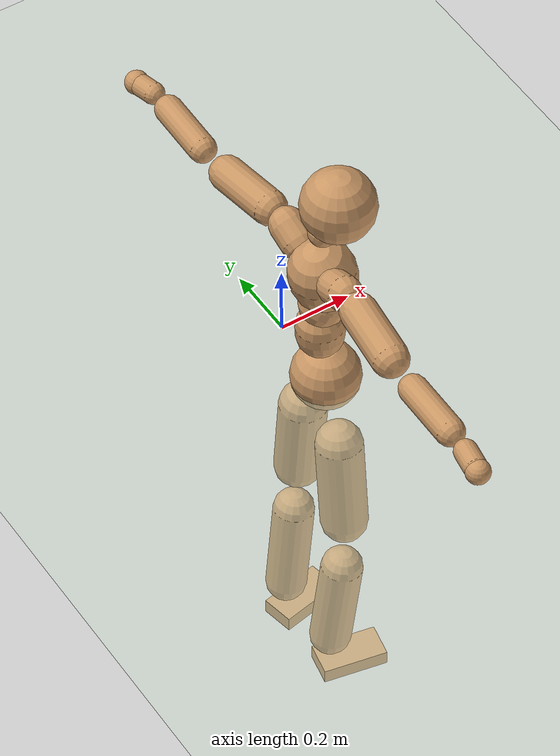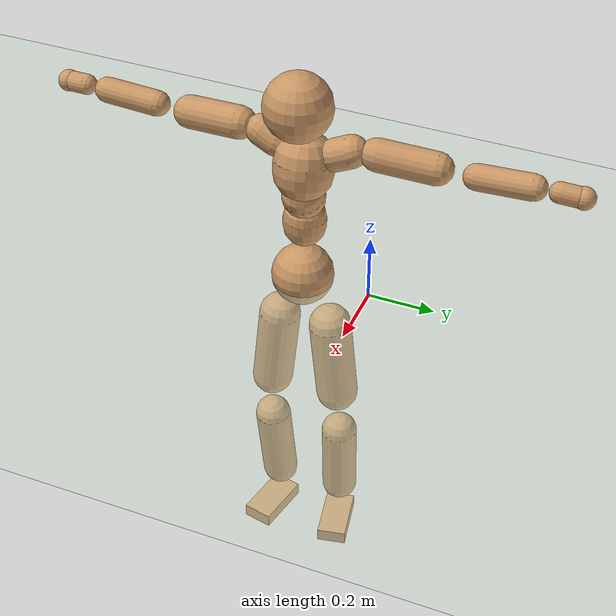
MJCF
<mujoco model="humanoid">
  <compiler coordinate="local" angle="radian"/>
  <default>
    <joint damping="0.0" armature="0.01" stiffness="0.0" limited="true"/>
    <geom conaffinity="1" condim="3" contype="7" margin="0.001" rgba="0.8 0.6 .4 1"/>
  </default>
  <asset>
    <texture type="skybox" builtin="gradient" rgb1=".4 .5 .6" rgb2="0 0 0" width="100" height="100"/>
    <texture builtin="flat" height="1278" mark="cross" markrgb="1 1 1" name="texgeom" random="0.01" rgb1="0.8 0.6 0.4" rgb2="0.8 0.6 0.4" type="cube" width="127"/>
    <texture builtin="checker" height="100" name="texplane" rgb1="0 0 0" rgb2="0.8 0.8 0.8" type="2d" width="100"/>
    <material name="MatPlane" reflectance="0.5" shininess="1" specular="1" texrepeat="60 60" texture="texplane"/>
    <material name="geom" texture="texgeom" texuniform="true"/>
  </asset>
  <worldbody>
    <light cutoff="100" diffuse="1 1 1" dir="-0 0 -1.3" directional="true" exponent="1" pos="0 0 1.3" specular=".1 .1 .1"/>
    <geom conaffinity="1" condim="3" name="floor" pos="0 0 0" rgba="0.8 0.9 0.8 1" size="100 100 .2" type="plane" material="MatPlane"/>
    <body name="Pelvis" pos="-0.0003 -0.2064 0.0182">
      <freejoint name="Pelvis"/>
      <geom type="sphere" contype="1" conaffinity="1" density="500" size="0.0930" pos="0.0000 0.0000 0.0000" name="Pelvis"/>
      <body name="L_Hip" pos="-0.0151 0.0733 -0.0953">
        <joint name="L_Hip_x" type="hinge" pos="0 0 0" axis="1 0 0" stiffness="800" damping="80" armature="0.02" range="-180.0000 180.0000"/>
        <joint name="L_Hip_y" type="hinge" pos="0 0 0" axis="0 1 0" stiffness="800" damping="80" armature="0.02" range="-180.0000 180.0000"/>
        <joint name="L_Hip_z" type="hinge" pos="0 0 0" axis="0 0 1" stiffness="800" damping="80" armature="0.02" range="-180.0000 180.0000"/>
        <geom type="capsule" contype="1" conaffinity="1" density="500" fromto="0.0002 0.0086 -0.0869 0.0009 0.0344 -0.3476" size="0.0643" name="L_Hip"/>
        <body name="L_Knee" pos="0.0011 0.043 -0.4344">
          <joint name="L_Knee_x" type="hinge" pos="0 0 0" axis="1 0 0" stiffness="800" damping="80" armature="0.02" range="-180.0000 180.0000"/>
          <joint name="L_Knee_y" type="hinge" pos="0 0 0" axis="0 1 0" stiffness="800" damping="80" armature="0.02" range="-180.0000 180.0000"/>
          <joint name="L_Knee_z" type="hinge" pos="0 0 0" axis="0 0 1" stiffness="800" damping="80" armature="0.02" range="-180.0000 180.0000"/>
          <geom type="capsule" contype="1" conaffinity="1" density="500" fromto="-0.0098 -0.0025 -0.0912 -0.0391 -0.0102 -0.3648" size="0.0557" name="L_Knee"/>
          <body name="L_Ankle" pos="-0.0489 -0.0127 -0.456">
            <joint name="L_Ankle_x" type="hinge" pos="0 0 0" axis="1 0 0" stiffness="800" damping="80" armature="0.02" range="-180.0000 180.0000"/>
            <joint name="L_Ankle_y" type="hinge" pos="0 0 0" axis="0 1 0" stiffness="800" damping="80" armature="0.02" range="-180.0000 180.0000"/>
            <joint name="L_Ankle_z" type="hinge" pos="0 0 0" axis="0 0 1" stiffness="800" damping="80" armature="0.02" range="-180.0000 180.0000"/>
            <geom type="box" contype="1" conaffinity="1" density="500" pos="0.0625 0.0123 -0.0312" size="0.0875 0.0456 0.0223" quat="0.9953 0.0000 0.0000 0.0967" name="L_Ankle"/>
            <body name="L_Toe" pos="0.1249 0.0245 -0.0624">
              <joint name="L_Toe_x" type="hinge" pos="0 0 0" axis="1 0 0" stiffness="500" damping="50" armature="0.02" range="-180.0000 180.0000"/>
              <joint name="L_Toe_y" type="hinge" pos="0 0 0" axis="0 1 0" stiffness="500" damping="50" armature="0.02" range="-180.0000 180.0000"/>
              <joint name="L_Toe_z" type="hinge" pos="0 0 0" axis="0 0 1" stiffness="500" damping="50" armature="0.02" range="-180.0000 180.0000"/>
              <geom type="box" contype="1" conaffinity="1" density="500" pos="0.0000 0.0000 0.0313" size="0.0009 0.0023 0.0011" quat="0.9947 0.0000 0.0000 0.1028" name="L_Toe"/>
            </body>
          </body>
        </body>
      </body>
      <body name="R_Hip" pos="-0.0107 -0.0705 -0.0935">
        <joint name="R_Hip_x" type="hinge" pos="0 0 0" axis="1 0 0" stiffness="800" damping="80" armature="0.02" range="-180.0000 180.0000"/>
        <joint name="R_Hip_y" type="hinge" pos="0 0 0" axis="0 1 0" stiffness="800" damping="80" armature="0.02" range="-180.0000 180.0000"/>
        <joint name="R_Hip_z" type="hinge" pos="0 0 0" axis="0 0 1" stiffness="800" damping="80" armature="0.02" range="-180.0000 180.0000"/>
        <geom type="capsule" contype="1" conaffinity="1" density="500" fromto="-0.0005 -0.0099 -0.0886 -0.0022 -0.0396 -0.3545" size="0.0632" name="R_Hip"/>
        <body name="R_Knee" pos="-0.0027 -0.0496 -0.4431">
          <joint name="R_Knee_x" type="hinge" pos="0 0 0" axis="1 0 0" stiffness="800" damping="80" armature="0.02" range="-180.0000 180.0000"/>
          <joint name="R_Knee_y" type="hinge" pos="0 0 0" axis="0 1 0" stiffness="800" damping="80" armature="0.02" range="-180.0000 180.0000"/>
          <joint name="R_Knee_z" type="hinge" pos="0 0 0" axis="0 0 1" stiffness="800" damping="80" armature="0.02" range="-180.0000 180.0000"/>
          <geom type="capsule" contype="1" conaffinity="1" density="500" fromto="-0.0092 0.0033 -0.0911 -0.0370 0.0133 -0.3646" size="0.056" name="R_Knee"/>
          <body name="R_Ankle" pos="-0.0462 0.0166 -0.4557">
            <joint name="R_Ankle_x" type="hinge" pos="0 0 0" axis="1 0 0" stiffness="800" damping="80" armature="0.02" range="-180.0000 180.0000"/>
            <joint name="R_Ankle_y" type="hinge" pos="0 0 0" axis="0 1 0" stiffness="800" damping="80" armature="0.02" range="-180.0000 180.0000"/>
            <joint name="R_Ankle_z" type="hinge" pos="0 0 0" axis="0 0 1" stiffness="800" damping="80" armature="0.02" range="-180.0000 180.0000"/>
            <geom type="box" contype="1" conaffinity="1" density="500" pos="0.0641 -0.0123 -0.0269" size="0.0894 0.0469 0.0218" quat="0.9955 0.0000 0.0000 -0.0950" name="R_Ankle"/>
            <body name="R_Toe" pos="0.1282 -0.0247 -0.0538">
              <joint name="R_Toe_x" type="hinge" pos="0 0 0" axis="1 0 0" stiffness="500" damping="50" armature="0.02" range="-180.0000 180.0000"/>
              <joint name="R_Toe_y" type="hinge" pos="0 0 0" axis="0 1 0" stiffness="500" damping="50" armature="0.02" range="-180.0000 180.0000"/>
              <joint name="R_Toe_z" type="hinge" pos="0 0 0" axis="0 0 1" stiffness="500" damping="50" armature="0.02" range="-180.0000 180.0000"/>
              <geom type="box" contype="1" conaffinity="1" density="500" pos="0.0000 0.0000 0.0293" size="0.0008 0.0023 0.0012" quat="0.9963 0.0000 0.0000 -0.0862" name="R_Toe"/>
            </body>
          </body>
        </body>
      </body>
      <body name="Torso" pos="-0.0175 -0.003 0.1088">
        <joint name="Torso_x" type="hinge" pos="0 0 0" axis="1 0 0" stiffness="1000" damping="100" armature="0.02" range="-180.0000 180.0000"/>
        <joint name="Torso_y" type="hinge" pos="0 0 0" axis="0 1 0" stiffness="1000" damping="100" armature="0.02" range="-180.0000 180.0000"/>
        <joint name="Torso_z" type="hinge" pos="0 0 0" axis="0 0 1" stiffness="1000" damping="100" armature="0.02" range="-180.0000 180.0000"/>
        <geom type="capsule" contype="1" conaffinity="1" density="500" fromto="-0.0011 0.0025 0.0834 -0.0008 0.0017 0.0556" size="0.0634" name="Torso"/>
        <body name="Spine" pos="-0.0019 0.0041 0.139">
          <joint name="Spine_x" type="hinge" pos="0 0 0" axis="1 0 0" stiffness="1000" damping="100" armature="0.02" range="-180.0000 180.0000"/>
          <joint name="Spine_y" type="hinge" pos="0 0 0" axis="0 1 0" stiffness="1000" damping="100" armature="0.02" range="-180.0000 180.0000"/>
          <joint name="Spine_z" type="hinge" pos="0 0 0" axis="0 0 1" stiffness="1000" damping="100" armature="0.02" range="-180.0000 180.0000"/>
          <geom type="capsule" contype="1" conaffinity="1" density="500" fromto="0.0156 0.0006 0.0305 0.0104 0.0004 0.0204" size="0.0634" name="Spine"/>
          <body name="Chest" pos="0.0259 0.0009 0.0509">
            <joint name="Chest_x" type="hinge" pos="0 0 0" axis="1 0 0" stiffness="1000" damping="100" armature="0.02" range="-180.0000 180.0000"/>
            <joint name="Chest_y" type="hinge" pos="0 0 0" axis="0 1 0" stiffness="1000" damping="100" armature="0.02" range="-180.0000 180.0000"/>
            <joint name="Chest_z" type="hinge" pos="0 0 0" axis="0 0 1" stiffness="1000" damping="100" armature="0.02" range="-180.0000 180.0000"/>
            <geom type="capsule" contype="1" conaffinity="1" density="500" fromto="-0.0196 -0.0013 0.0878 -0.0130 -0.0009 0.0585" size="0.0878" name="Chest"/>
            <body name="Neck" pos="-0.03 -0.0043 0.2126">
              <joint name="Neck_x" type="hinge" pos="0 0 0" axis="1 0 0" stiffness="500" damping="50" armature="0.02" range="-180.0000 180.0000"/>
              <joint name="Neck_y" type="hinge" pos="0 0 0" axis="0 1 0" stiffness="500" damping="50" armature="0.02" range="-180.0000 180.0000"/>
              <joint name="Neck_z" type="hinge" pos="0 0 0" axis="0 0 1" stiffness="500" damping="50" armature="0.02" range="-180.0000 180.0000"/>
              <geom type="capsule" contype="1" conaffinity="1" density="500" fromto="0.0120 0.0013 0.0153 0.0480 0.0054 0.0613" size="0.0394" name="Neck"/>
              <body name="Head" pos="0.06 0.0067 0.0766">
                <joint name="Head_x" type="hinge" pos="0 0 0" axis="1 0 0" stiffness="500" damping="50" armature="0.02" range="-180.0000 180.0000"/>
                <joint name="Head_y" type="hinge" pos="0 0 0" axis="0 1 0" stiffness="500" damping="50" armature="0.02" range="-180.0000 180.0000"/>
                <joint name="Head_z" type="hinge" pos="0 0 0" axis="0 0 1" stiffness="500" damping="50" armature="0.02" range="-180.0000 180.0000"/>
                <geom type="sphere" contype="1" conaffinity="1" density="500" size="0.0983" pos="0.0000 0.0000 0.0000" name="Head"/>
              </body>
            </body>
            <body name="L_Thorax" pos="-0.031 0.0703 0.1139">
              <joint name="L_Thorax_x" type="hinge" pos="0 0 0" axis="1 0 0" stiffness="500" damping="50" armature="0.02" range="-180.0000 180.0000"/>
              <joint name="L_Thorax_y" type="hinge" pos="0 0 0" axis="0 1 0" stiffness="500" damping="50" armature="0.02" range="-180.0000 180.0000"/>
              <joint name="L_Thorax_z" type="hinge" pos="0 0 0" axis="0 0 1" stiffness="500" damping="50" armature="0.02" range="-180.0000 180.0000"/>
              <geom type="capsule" contype="1" conaffinity="1" density="500" fromto="-0.0010 0.0156 0.0072 -0.0040 0.0624 0.0289" size="0.0475" name="L_Thorax"/>
              <body name="L_Shoulder" pos="-0.005 0.078 0.0361">
                <joint name="L_Shoulder_x" type="hinge" pos="0 0 0" axis="1 0 0" stiffness="500" damping="50" armature="0.02" range="-720.0000 720.0000"/>
                <joint name="L_Shoulder_y" type="hinge" pos="0 0 0" axis="0 1 0" stiffness="500" damping="50" armature="0.02" range="-720.0000 720.0000"/>
                <joint name="L_Shoulder_z" type="hinge" pos="0 0 0" axis="0 0 1" stiffness="500" damping="50" armature="0.02" range="-720.0000 720.0000"/>
                <geom type="capsule" contype="1" conaffinity="1" density="500" fromto="-0.0059 0.0553 -0.0044 -0.0238 0.2211 -0.0176" size="0.0473" name="L_Shoulder"/>
                <body name="L_Elbow" pos="-0.0297 0.2764 -0.022">
                  <joint name="L_Elbow_x" type="hinge" pos="0 0 0" axis="1 0 0" stiffness="500" damping="50" armature="0.02" range="-720.0000 720.0000"/>
                  <joint name="L_Elbow_y" type="hinge" pos="0 0 0" axis="0 1 0" stiffness="500" damping="50" armature="0.02" range="-720.0000 720.0000"/>
                  <joint name="L_Elbow_z" type="hinge" pos="0 0 0" axis="0 0 1" stiffness="500" damping="50" armature="0.02" range="-720.0000 720.0000"/>
                  <geom type="capsule" contype="1" conaffinity="1" density="500" fromto="-0.0003 0.0527 0.0025 -0.0010 0.2107 0.0099" size="0.0374" name="L_Elbow"/>
                  <body name="L_Wrist" pos="-0.0013 0.2633 0.0124">
                    <joint name="L_Wrist_x" type="hinge" pos="0 0 0" axis="1 0 0" stiffness="300" damping="30" armature="0.02" range="-180.0000 180.0000"/>
                    <joint name="L_Wrist_y" type="hinge" pos="0 0 0" axis="0 1 0" stiffness="300" damping="30" armature="0.02" range="-180.0000 180.0000"/>
                    <joint name="L_Wrist_z" type="hinge" pos="0 0 0" axis="0 0 1" stiffness="300" damping="30" armature="0.02" range="-180.0000 180.0000"/>
                    <geom type="capsule" contype="1" conaffinity="1" density="500" fromto="-0.0027 0.0160 -0.0020 -0.0110 0.0640 -0.0082" size="0.0297" name="L_Wrist"/>
                    <body name="L_Hand" pos="-0.0137 0.08 -0.0102">
                      <joint name="L_Hand_x" type="hinge" pos="0 0 0" axis="1 0 0" stiffness="300" damping="30" armature="0.02" range="-180.0000 180.0000"/>
                      <joint name="L_Hand_y" type="hinge" pos="0 0 0" axis="0 1 0" stiffness="300" damping="30" armature="0.02" range="-180.0000 180.0000"/>
                      <joint name="L_Hand_z" type="hinge" pos="0 0 0" axis="0 0 1" stiffness="300" damping="30" armature="0.02" range="-180.0000 180.0000"/>
                      <geom type="sphere" contype="1" conaffinity="1" density="500" size="0.0321" pos="0.0000 0.0000 0.0000" name="L_Hand"/>
                    </body>
                  </body>
                </body>
              </body>
            </body>
            <body name="R_Thorax" pos="-0.0368 -0.0725 0.1123">
              <joint name="R_Thorax_x" type="hinge" pos="0 0 0" axis="1 0 0" stiffness="500" damping="50" armature="0.02" range="-180.0000 180.0000"/>
              <joint name="R_Thorax_y" type="hinge" pos="0 0 0" axis="0 1 0" stiffness="500" damping="50" armature="0.02" range="-180.0000 180.0000"/>
              <joint name="R_Thorax_z" type="hinge" pos="0 0 0" axis="0 0 1" stiffness="500" damping="50" armature="0.02" range="-180.0000 180.0000"/>
              <geom type="capsule" contype="1" conaffinity="1" density="500" fromto="-0.0012 -0.0164 0.0074 -0.0048 -0.0655 0.0298" size="0.0462" name="R_Thorax"/>
              <body name="R_Shoulder" pos="-0.006 -0.0819 0.0372">
                <joint name="R_Shoulder_x" type="hinge" pos="0 0 0" axis="1 0 0" stiffness="500" damping="50" armature="0.02" range="-720.0000 720.0000"/>
                <joint name="R_Shoulder_y" type="hinge" pos="0 0 0" axis="0 1 0" stiffness="500" damping="50" armature="0.02" range="-720.0000 720.0000"/>
                <joint name="R_Shoulder_z" type="hinge" pos="0 0 0" axis="0 0 1" stiffness="500" damping="50" armature="0.02" range="-720.0000 720.0000"/>
                <geom type="capsule" contype="1" conaffinity="1" density="500" fromto="-0.0048 -0.0538 -0.0039 -0.0192 -0.2150 -0.0157" size="0.0486" name="R_Shoulder"/>
                <body name="R_Elbow" pos="-0.024 -0.2688 -0.0196">
                  <joint name="R_Elbow_x" type="hinge" pos="0 0 0" axis="1 0 0" stiffness="500" damping="50" armature="0.02" range="-720.0000 720.0000"/>
                  <joint name="R_Elbow_y" type="hinge" pos="0 0 0" axis="0 1 0" stiffness="500" damping="50" armature="0.02" range="-720.0000 720.0000"/>
                  <joint name="R_Elbow_z" type="hinge" pos="0 0 0" axis="0 0 1" stiffness="500" damping="50" armature="0.02" range="-720.0000 720.0000"/>
                  <geom type="capsule" contype="1" conaffinity="1" density="500" fromto="-0.0013 -0.0544 0.0017 -0.0054 -0.2175 0.0068" size="0.0376" name="R_Elbow"/>
                  <body name="R_Wrist" pos="-0.0067 -0.2719 0.0085">
                    <joint name="R_Wrist_x" type="hinge" pos="0 0 0" axis="1 0 0" stiffness="300" damping="30" armature="0.02" range="-180.0000 180.0000"/>
                    <joint name="R_Wrist_y" type="hinge" pos="0 0 0" axis="0 1 0" stiffness="300" damping="30" armature="0.02" range="-180.0000 180.0000"/>
                    <joint name="R_Wrist_z" type="hinge" pos="0 0 0" axis="0 0 1" stiffness="300" damping="30" armature="0.02" range="-180.0000 180.0000"/>
                    <geom type="capsule" contype="1" conaffinity="1" density="500" fromto="-0.0021 -0.0161 -0.0015 -0.0084 -0.0645 -0.0059" size="0.0304" name="R_Wrist"/>
                    <body name="R_Hand" pos="-0.0104 -0.0806 -0.0074">
                      <joint name="R_Hand_x" type="hinge" pos="0 0 0" axis="1 0 0" stiffness="300" damping="30" armature="0.02" range="-180.0000 180.0000"/>
                      <joint name="R_Hand_y" type="hinge" pos="0 0 0" axis="0 1 0" stiffness="300" damping="30" armature="0.02" range="-180.0000 180.0000"/>
                      <joint name="R_Hand_z" type="hinge" pos="0 0 0" axis="0 0 1" stiffness="300" damping="30" armature="0.02" range="-180.0000 180.0000"/>
                      <geom type="sphere" contype="1" conaffinity="1" density="500" size="0.0322" pos="0.0000 0.0000 0.0000" name="R_Hand"/>
                    </body>
                  </body>
                </body>
              </body>
            </body>
          </body>
        </body>
      </body>
    </body>
  </worldbody>
  <actuator>
    <motor name="L_Hip_x" joint="L_Hip_x" gear="500"/>
    <motor name="L_Hip_y" joint="L_Hip_y" gear="500"/>
    <motor name="L_Hip_z" joint="L_Hip_z" gear="500"/>
    <motor name="L_Knee_x" joint="L_Knee_x" gear="500"/>
    <motor name="L_Knee_y" joint="L_Knee_y" gear="500"/>
    <motor name="L_Knee_z" joint="L_Knee_z" gear="500"/>
    <motor name="L_Ankle_x" joint="L_Ankle_x" gear="500"/>
    <motor name="L_Ankle_y" joint="L_Ankle_y" gear="500"/>
    <motor name="L_Ankle_z" joint="L_Ankle_z" gear="500"/>
    <motor name="L_Toe_x" joint="L_Toe_x" gear="500"/>
    <motor name="L_Toe_y" joint="L_Toe_y" gear="500"/>
    <motor name="L_Toe_z" joint="L_Toe_z" gear="500"/>
    <motor name="R_Hip_x" joint="R_Hip_x" gear="500"/>
    <motor name="R_Hip_y" joint="R_Hip_y" gear="500"/>
    <motor name="R_Hip_z" joint="R_Hip_z" gear="500"/>
    <motor name="R_Knee_x" joint="R_Knee_x" gear="500"/>
    <motor name="R_Knee_y" joint="R_Knee_y" gear="500"/>
    <motor name="R_Knee_z" joint="R_Knee_z" gear="500"/>
    <motor name="R_Ankle_x" joint="R_Ankle_x" gear="500"/>
    <motor name="R_Ankle_y" joint="R_Ankle_y" gear="500"/>
    <motor name="R_Ankle_z" joint="R_Ankle_z" gear="500"/>
    <motor name="R_Toe_x" joint="R_Toe_x" gear="500"/>
    <motor name="R_Toe_y" joint="R_Toe_y" gear="500"/>
    <motor name="R_Toe_z" joint="R_Toe_z" gear="500"/>
    <motor name="Torso_x" joint="Torso_x" gear="500"/>
    <motor name="Torso_y" joint="Torso_y" gear="500"/>
    <motor name="Torso_z" joint="Torso_z" gear="500"/>
    <motor name="Spine_x" joint="Spine_x" gear="500"/>
    <motor name="Spine_y" joint="Spine_y" gear="500"/>
    <motor name="Spine_z" joint="Spine_z" gear="500"/>
    <motor name="Chest_x" joint="Chest_x" gear="500"/>
    <motor name="Chest_y" joint="Chest_y" gear="500"/>
    <motor name="Chest_z" joint="Chest_z" gear="500"/>
    <motor name="Neck_x" joint="Neck_x" gear="500"/>
    <motor name="Neck_y" joint="Neck_y" gear="500"/>
    <motor name="Neck_z" joint="Neck_z" gear="500"/>
    <motor name="Head_x" joint="Head_x" gear="500"/>
    <motor name="Head_y" joint="Head_y" gear="500"/>
    <motor name="Head_z" joint="Head_z" gear="500"/>
    <motor name="L_Thorax_x" joint="L_Thorax_x" gear="500"/>
    <motor name="L_Thorax_y" joint="L_Thorax_y" gear="500"/>
    <motor name="L_Thorax_z" joint="L_Thorax_z" gear="500"/>
    <motor name="L_Shoulder_x" joint="L_Shoulder_x" gear="500"/>
    <motor name="L_Shoulder_y" joint="L_Shoulder_y" gear="500"/>
    <motor name="L_Shoulder_z" joint="L_Shoulder_z" gear="500"/>
    <motor name="L_Elbow_x" joint="L_Elbow_x" gear="500"/>
    <motor name="L_Elbow_y" joint="L_Elbow_y" gear="500"/>
    <motor name="L_Elbow_z" joint="L_Elbow_z" gear="500"/>
    <motor name="L_Wrist_x" joint="L_Wrist_x" gear="500"/>
    <motor name="L_Wrist_y" joint="L_Wrist_y" gear="500"/>
    <motor name="L_Wrist_z" joint="L_Wrist_z" gear="500"/>
    <motor name="L_Hand_x" joint="L_Hand_x" gear="500"/>
    <motor name="L_Hand_y" joint="L_Hand_y" gear="500"/>
    <motor name="L_Hand_z" joint="L_Hand_z" gear="500"/>
    <motor name="R_Thorax_x" joint="R_Thorax_x" gear="500"/>
    <motor name="R_Thorax_y" joint="R_Thorax_y" gear="500"/>
    <motor name="R_Thorax_z" joint="R_Thorax_z" gear="500"/>
    <motor name="R_Shoulder_x" joint="R_Shoulder_x" gear="500"/>
    <motor name="R_Shoulder_y" joint="R_Shoulder_y" gear="500"/>
    <motor name="R_Shoulder_z" joint="R_Shoulder_z" gear="500"/>
    <motor name="R_Elbow_x" joint="R_Elbow_x" gear="500"/>
    <motor name="R_Elbow_y" joint="R_Elbow_y" gear="500"/>
    <motor name="R_Elbow_z" joint="R_Elbow_z" gear="500"/>
    <motor name="R_Wrist_x" joint="R_Wrist_x" gear="500"/>
    <motor name="R_Wrist_y" joint="R_Wrist_y" gear="500"/>
    <motor name="R_Wrist_z" joint="R_Wrist_z" gear="500"/>
    <motor name="R_Hand_x" joint="R_Hand_x" gear="500"/>
    <motor name="R_Hand_y" joint="R_Hand_y" gear="500"/>
    <motor name="R_Hand_z" joint="R_Hand_z" gear="500"/>
  </actuator>
  <contact>
    <exclude body1="Torso" body2="Chest"/>
    <exclude body1="Head" body2="Chest"/>
    <exclude body1="R_Knee" body2="R_Toe"/>
    <exclude body1="R_Knee" body2="L_Ankle"/>
    <exclude body1="R_Knee" body2="L_Toe"/>
    <exclude body1="L_Knee" body2="L_Toe"/>
    <exclude body1="L_Knee" body2="R_Ankle"/>
    <exclude body1="L_Knee" body2="R_Toe"/>
    <exclude body1="L_Shoulder" body2="Chest"/>
    <exclude body1="R_Shoulder" body2="Chest"/>
  </contact>
  <sensor/>
  <size njmax="700" nconmax="700"/>
</mujoco>
